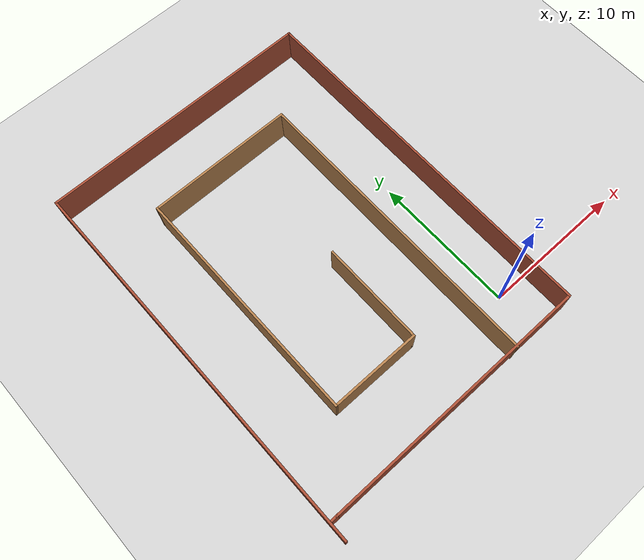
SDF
<sdf version="1.6">
 <world name="default">
  <light name="sun" type="directional">
   <pose>0 0 10 0 -0 0</pose>
   <diffuse>0.8 0.8 0.8 1</diffuse>
   <specular>0.2 0.2 0.2 1</specular>
   <attenuation>
    <range>1000</range>
    <constant>0.9</constant>
    <linear>0.01</linear>
    <quadratic>0.001</quadratic>
   </attenuation>
   <direction>-0.5 0.1 -0.9</direction>
  </light>
  <model name="ground_plane">
   <static>1</static>
   <link name="link">
    <collision name="collision">
     <geometry><plane><normal>0 0 1</normal><size>100 100</size></plane></geometry>
     <surface>
      <contact><collide_bitmask>65535</collide_bitmask></contact>
      <friction><ode><mu>100</mu><mu2>50</mu2></ode></friction>
     </surface>
    </collision>
    <visual name="visual">
     <cast_shadows>0</cast_shadows>
     <geometry><plane><normal>0 0 1</normal><size>100 100</size></plane></geometry>
     <material>
      <script><uri>file://media/materials/scripts/gazebo.material</uri><name>Gazebo/Grey</name></script>
     </material>
    </visual>
   </link>
  </model>
  <gravity>0 0 -9.8</gravity>
  <magnetic_field>6e-06 2.3e-05 -4.2e-05</magnetic_field>
  <atmosphere type="adiabatic"/>
  <physics name="default_physics" default="0" type="ode">
   <max_step_size>0.001</max_step_size>
   <real_time_factor>1</real_time_factor>
   <real_time_update_rate>1000</real_time_update_rate>
  </physics>
  <scene><ambient>0.4 0.4 0.4 1</ambient><background>0.7 0.7 0.7 1</background><shadows>1</shadows></scene>
  <audio><device>default</device></audio>
  <spherical_coordinates>
   <surface_model>EARTH_WGS84</surface_model>
   <latitude_deg>0</latitude_deg>
   <longitude_deg>0</longitude_deg>
   <elevation>0</elevation>
   <heading_deg>0</heading_deg>
  </spherical_coordinates>
  <model name="random_maze">
   <pose>-7.26635 9.16181 0 0 -0 0</pose>
   <link name="Wall_12">
    <collision name="Wall_12_Collision">
     <geometry><box><size>27 0.15 2.5</size></box></geometry>
     <pose>0 0 1.25 0 -0 0</pose>
    </collision>
    <visual name="Wall_12_Visual">
     <pose>0 0 1.25 0 -0 0</pose>
     <geometry><box><size>27 0.15 2.5</size></box></geometry>
     <material>
      <script><uri>file://media/materials/scripts/gazebo.material</uri><name>Gazebo/Bricks</name></script>
      <ambient>1 1 1 1</ambient>
     </material>
     <meta><layer>0</layer></meta>
    </visual>
    <pose>-9.55 -0 0 0 -0 1.5708</pose>
   </link>
   <link name="Wall_13">
    <collision name="Wall_13_Collision">
     <geometry><box><size>19.25 0.15 2.5</size></box></geometry>
     <pose>0 0 1.25 0 -0 0</pose>
    </collision>
    <visual name="Wall_13_Visual">
     <pose>0 0 1.25 0 -0 0</pose>
     <geometry><box><size>19.25 0.15 2.5</size></box></geometry>
     <material>
      <script><uri>file://media/materials/scripts/gazebo.material</uri><name>Gazebo/Bricks</name></script>
      <ambient>1 1 1 1</ambient>
     </material>
     <meta><layer>0</layer></meta>
    </visual>
    <pose>0 13.425 0 0 -0 0</pose>
   </link>
   <link name="Wall_14">
    <collision name="Wall_14_Collision">
     <geometry><box><size>25.75 0.15 2.5</size></box></geometry>
     <pose>0 0 1.25 0 -0 0</pose>
    </collision>
    <visual name="Wall_14_Visual">
     <pose>0 0 1.25 0 -0 0</pose>
     <geometry><box><size>25.75 0.15 2.5</size></box></geometry>
     <material>
      <script><uri>file://media/materials/scripts/gazebo.material</uri><name>Gazebo/Bricks</name></script>
      <ambient>1 1 1 1</ambient>
     </material>
     <meta><layer>0</layer></meta>
    </visual>
    <pose>9.55 0.625 0 0 -0 -1.5708</pose>
   </link>
   <link name="Wall_15">
    <collision name="Wall_15_Collision">
     <geometry><box><size>18.75 0.15 2.5</size></box></geometry>
     <pose>0 0 1.25 0 -0 0</pose>
    </collision>
    <visual name="Wall_15_Visual">
     <pose>0 0 1.25 0 -0 0</pose>
     <geometry><box><size>18.75 0.15 2.5</size></box></geometry>
     <material>
      <script><uri>file://media/materials/scripts/gazebo.material</uri><name>Gazebo/Bricks</name></script>
      <ambient>1 1 1 1</ambient>
     </material>
     <meta><layer>0</layer></meta>
    </visual>
    <pose>0.25 -12.175 0 0 -0 3.14159</pose>
   </link>
   <link name="Wall_17">
    <collision name="Wall_17_Collision">
     <geometry><box><size>21.25 0.15 2.5</size></box></geometry>
     <pose>0 0 1.25 0 -0 0</pose>
    </collision>
    <visual name="Wall_17_Visual">
     <pose>0 0 1.25 0 -0 0</pose>
     <geometry><box><size>21.25 0.15 2.5</size></box></geometry>
     <material>
      <script><uri>file://media/materials/scripts/gazebo.material</uri><name>Gazebo/Wood</name></script>
      <ambient>1 1 1 1</ambient>
     </material>
     <meta><layer>0</layer></meta>
    </visual>
    <pose>4.986 -1.679 0 0 -0 1.5708</pose>
   </link>
   <link name="Wall_18">
    <collision name="Wall_18_Collision">
     <geometry><box><size>10.25 0.15 2.5</size></box></geometry>
     <pose>0 0 1.25 0 -0 0</pose>
    </collision>
    <visual name="Wall_18_Visual">
     <pose>0 0 1.25 0 -0 0</pose>
     <geometry><box><size>10.25 0.15 2.5</size></box></geometry>
     <material>
      <script><uri>file://media/materials/scripts/gazebo.material</uri><name>Gazebo/Wood</name></script>
      <ambient>1 1 1 1</ambient>
     </material>
     <meta><layer>0</layer></meta>
    </visual>
    <pose>-0.064 8.871 0 0 -0 3.14159</pose>
   </link>
   <link name="Wall_19">
    <collision name="Wall_19_Collision">
     <geometry><box><size>16.75 0.15 2.5</size></box></geometry>
     <pose>0 0 1.25 0 -0 0</pose>
    </collision>
    <visual name="Wall_19_Visual">
     <pose>0 0 1.25 0 -0 0</pose>
     <geometry><box><size>16.75 0.15 2.5</size></box></geometry>
     <material>
      <script><uri>file://media/materials/scripts/gazebo.material</uri><name>Gazebo/Wood</name></script>
      <ambient>1 1 1 1</ambient>
     </material>
     <meta><layer>0</layer></meta>
    </visual>
    <pose>-5.114 0.570999 0 0 -0 -1.5708</pose>
   </link>
   <link name="Wall_20">
    <collision name="Wall_20_Collision">
     <geometry><box><size>6.25 0.15 2.5</size></box></geometry>
     <pose>0 0 1.25 0 -0 0</pose>
    </collision>
    <visual name="Wall_20_Visual">
     <pose>0 0 1.25 0 -0 0</pose>
     <geometry><box><size>6.25 0.15 2.5</size></box></geometry>
     <material>
      <script><uri>file://media/materials/scripts/gazebo.material</uri><name>Gazebo/Wood</name></script>
      <ambient>1 1 1 1</ambient>
     </material>
     <meta><layer>0</layer></meta>
    </visual>
    <pose>-2.064 -7.729 0 0 -0 0</pose>
   </link>
   <link name="Wall_21">
    <collision name="Wall_21_Collision">
     <geometry><box><size>7.25 0.15 2.5</size></box></geometry>
     <pose>0 0 1.25 0 -0 0</pose>
    </collision>
    <visual name="Wall_21_Visual">
     <pose>0 0 1.25 0 -0 0</pose>
     <geometry><box><size>7.25 0.15 2.5</size></box></geometry>
     <material>
      <script><uri>file://media/materials/scripts/gazebo.material</uri><name>Gazebo/Wood</name></script>
      <ambient>1 1 1 1</ambient>
     </material>
     <meta><layer>0</layer></meta>
    </visual>
    <pose>0.986 -4.179 0 0 -0 1.5708</pose>
   </link>
   <link name="Wall_23">
    <collision name="Wall_23_Collision">
     <geometry><box><size>0.5 0.15 2.5</size></box></geometry>
     <pose>0 0 1.25 0 -0 0</pose>
    </collision>
    <visual name="Wall_23_Visual">
     <pose>0 0 1.25 0 -0 0</pose>
     <geometry><box><size>0.5 0.15 2.5</size></box></geometry>
     <material>
      <script><uri>file://media/materials/scripts/gazebo.material</uri><name>Gazebo/Bricks</name></script>
      <ambient>1 1 1 1</ambient>
     </material>
     <meta><layer>0</layer></meta>
    </visual>
    <pose>-9.225 -12.175 0 0 -0 3.14159</pose>
   </link>
   <static>1</static>
  </model>
 </world>
</sdf>
